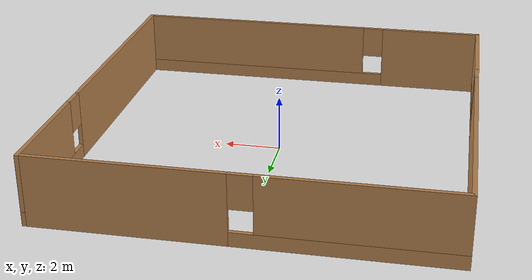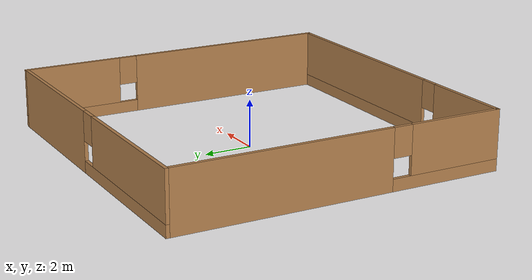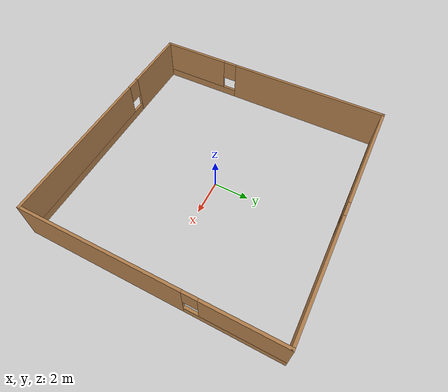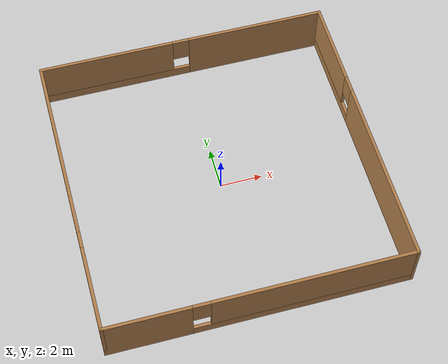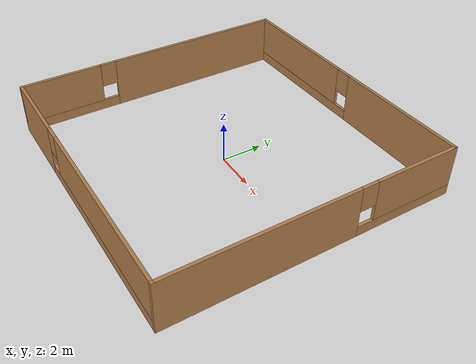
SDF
<?xml version='1.0'?>
<sdf version='1.6'>
  <model name='walls'>
    <pose frame=''>-0.030217 0.029853 0 0 -0 0</pose>
    <link name='Wall_11'>
      <pose frame=''>6.93375 -0 0 0 -0 1.5708</pose>
      <visual name='Wall_11_Visual_0'>
        <pose frame=''>-2.52614 0 1.25 0 -0 0</pose>
        <geometry>
          <box>
            <size>8.94773 0.15 2.5</size>
          </box>
        </geometry>
        <material>
          <script>
            <uri>file://media/materials/scripts/gazebo.material</uri>
            <name>Gazebo/Wood</name>
          </script>
          <ambient>1 1 1 1</ambient>
        </material>
        <meta>
          <layer>0</layer>
        </meta>
      </visual>
      <collision name='Wall_11_Collision_0'>
        <geometry>
          <box>
            <size>8.94773 0.15 2.5</size>
          </box>
        </geometry>
        <pose frame=''>-2.52614 0 1.25 0 -0 0</pose>
      </collision>
      <visual name='Wall_11_Visual_1'>
        <pose frame=''>4.47386 0 0.25 0 -0 0</pose>
        <geometry>
          <box>
            <size>5.05227 0.15 0.5</size>
          </box>
        </geometry>
        <material>
          <script>
            <uri>file://media/materials/scripts/gazebo.material</uri>
            <name>Gazebo/Wood</name>
          </script>
          <ambient>1 1 1 1</ambient>
        </material>
        <meta>
          <layer>0</layer>
        </meta>
      </visual>
      <collision name='Wall_11_Collision_1'>
        <geometry>
          <box>
            <size>5.05227 0.15 0.5</size>
          </box>
        </geometry>
        <pose frame=''>4.47386 0 0.25 0 -0 0</pose>
      </collision>
      <visual name='Wall_11_Visual_2'>
        <pose frame=''>4.87386 0 1.5 0 -0 0</pose>
        <geometry>
          <box>
            <size>4.25227 0.15 2</size>
          </box>
        </geometry>
        <material>
          <script>
            <uri>file://media/materials/scripts/gazebo.material</uri>
            <name>Gazebo/Wood</name>
          </script>
          <ambient>1 1 1 1</ambient>
        </material>
        <meta>
          <layer>0</layer>
        </meta>
      </visual>
      <collision name='Wall_11_Collision_2'>
        <geometry>
          <box>
            <size>4.25227 0.15 2</size>
          </box>
        </geometry>
        <pose frame=''>4.87386 0 1.5 0 -0 0</pose>
      </collision>
      <visual name='Wall_11_Visual_3'>
        <pose frame=''>2.34773 0 1.9 0 -0 0</pose>
        <geometry>
          <box>
            <size>0.8 0.15 1.2</size>
          </box>
        </geometry>
        <material>
          <script>
            <uri>file://media/materials/scripts/gazebo.material</uri>
            <name>Gazebo/Wood</name>
          </script>
          <ambient>1 1 1 1</ambient>
        </material>
        <meta>
          <layer>0</layer>
        </meta>
      </visual>
      <collision name='Wall_11_Collision_3'>
        <geometry>
          <box>
            <size>0.8 0.15 1.2</size>
          </box>
        </geometry>
        <pose frame=''>2.34773 0 1.9 0 -0 0</pose>
      </collision>
    </link>
    <link name='Wall_14'>
      <pose frame=''>-0.008745 6.925 0 0 -0 3.14159</pose>
      <visual name='Wall_14_Visual_0'>
        <pose frame=''>-3.65586 0 1.25 0 -0 0</pose>
        <geometry>
          <box>
            <size>6.68827 0.15 2.5</size>
          </box>
        </geometry>
        <material>
          <script>
            <uri>file://media/materials/scripts/gazebo.material</uri>
            <name>Gazebo/Wood</name>
          </script>
          <ambient>1 1 1 1</ambient>
        </material>
        <meta>
          <layer>0</layer>
        </meta>
      </visual>
      <collision name='Wall_14_Collision_0'>
        <geometry>
          <box>
            <size>6.68827 0.15 2.5</size>
          </box>
        </geometry>
        <pose frame=''>-3.65586 0 1.25 0 -0 0</pose>
      </collision>
      <visual name='Wall_14_Visual_1'>
        <pose frame=''>3.34414 0 0.25 0 -0 0</pose>
        <geometry>
          <box>
            <size>7.31173 0.15 0.5</size>
          </box>
        </geometry>
        <material>
          <script>
            <uri>file://media/materials/scripts/gazebo.material</uri>
            <name>Gazebo/Wood</name>
          </script>
          <ambient>1 1 1 1</ambient>
        </material>
        <meta>
          <layer>0</layer>
        </meta>
      </visual>
      <collision name='Wall_14_Collision_1'>
        <geometry>
          <box>
            <size>7.31173 0.15 0.5</size>
          </box>
        </geometry>
        <pose frame=''>3.34414 0 0.25 0 -0 0</pose>
      </collision>
      <visual name='Wall_14_Visual_2'>
        <pose frame=''>3.74413 0 1.5 0 -0 0</pose>
        <geometry>
          <box>
            <size>6.51173 0.15 2</size>
          </box>
        </geometry>
        <material>
          <script>
            <uri>file://media/materials/scripts/gazebo.material</uri>
            <name>Gazebo/Wood</name>
          </script>
          <ambient>1 1 1 1</ambient>
        </material>
        <meta>
          <layer>0</layer>
        </meta>
      </visual>
      <collision name='Wall_14_Collision_2'>
        <geometry>
          <box>
            <size>6.51173 0.15 2</size>
          </box>
        </geometry>
        <pose frame=''>3.74413 0 1.5 0 -0 0</pose>
      </collision>
      <visual name='Wall_14_Visual_3'>
        <pose frame=''>0.088271 0 1.9 0 -0 0</pose>
        <geometry>
          <box>
            <size>0.8 0.15 1.2</size>
          </box>
        </geometry>
        <material>
          <script>
            <uri>file://media/materials/scripts/gazebo.material</uri>
            <name>Gazebo/Wood</name>
          </script>
          <ambient>1 1 1 1</ambient>
        </material>
        <meta>
          <layer>0</layer>
        </meta>
      </visual>
      <collision name='Wall_14_Collision_3'>
        <geometry>
          <box>
            <size>0.8 0.15 1.2</size>
          </box>
        </geometry>
        <pose frame=''>0.088271 0 1.9 0 -0 0</pose>
      </collision>
    </link>
    <link name='Wall_16'>
      <pose frame=''>-6.93375 -0 0 0 0 -1.5708</pose>
      <visual name='Wall_16_Visual_0'>
        <pose frame=''>-2.41071 0 1.25 0 -0 0</pose>
        <geometry>
          <box>
            <size>9.17859 0.15 2.5</size>
          </box>
        </geometry>
        <material>
          <script>
            <uri>file://media/materials/scripts/gazebo.material</uri>
            <name>Gazebo/Wood</name>
          </script>
          <ambient>1 1 1 1</ambient>
        </material>
        <meta>
          <layer>0</layer>
        </meta>
      </visual>
      <collision name='Wall_16_Collision_0'>
        <geometry>
          <box>
            <size>9.17859 0.15 2.5</size>
          </box>
        </geometry>
        <pose frame=''>-2.41071 0 1.25 0 -0 0</pose>
      </collision>
      <visual name='Wall_16_Visual_1'>
        <pose frame=''>4.58929 0 0.25 0 -0 0</pose>
        <geometry>
          <box>
            <size>4.82141 0.15 0.5</size>
          </box>
        </geometry>
        <material>
          <script>
            <uri>file://media/materials/scripts/gazebo.material</uri>
            <name>Gazebo/Wood</name>
          </script>
          <ambient>1 1 1 1</ambient>
        </material>
        <meta>
          <layer>0</layer>
        </meta>
      </visual>
      <collision name='Wall_16_Collision_1'>
        <geometry>
          <box>
            <size>4.82141 0.15 0.5</size>
          </box>
        </geometry>
        <pose frame=''>4.58929 0 0.25 0 -0 0</pose>
      </collision>
      <visual name='Wall_16_Visual_2'>
        <pose frame=''>4.9893 0 1.5 0 -0 0</pose>
        <geometry>
          <box>
            <size>4.02141 0.15 2</size>
          </box>
        </geometry>
        <material>
          <script>
            <uri>file://media/materials/scripts/gazebo.material</uri>
            <name>Gazebo/Wood</name>
          </script>
          <ambient>1 1 1 1</ambient>
        </material>
        <meta>
          <layer>0</layer>
        </meta>
      </visual>
      <collision name='Wall_16_Collision_2'>
        <geometry>
          <box>
            <size>4.02141 0.15 2</size>
          </box>
        </geometry>
        <pose frame=''>4.9893 0 1.5 0 -0 0</pose>
      </collision>
      <visual name='Wall_16_Visual_3'>
        <pose frame=''>2.57859 0 1.9 0 -0 0</pose>
        <geometry>
          <box>
            <size>0.8 0.15 1.2</size>
          </box>
        </geometry>
        <material>
          <script>
            <uri>file://media/materials/scripts/gazebo.material</uri>
            <name>Gazebo/Wood</name>
          </script>
          <ambient>1 1 1 1</ambient>
        </material>
        <meta>
          <layer>0</layer>
        </meta>
      </visual>
      <collision name='Wall_16_Collision_3'>
        <geometry>
          <box>
            <size>0.8 0.15 1.2</size>
          </box>
        </geometry>
        <pose frame=''>2.57859 0 1.9 0 -0 0</pose>
      </collision>
    </link>
    <link name='Wall_18'>
      <pose frame=''>-0 -6.925 0 0 -0 0</pose>
      <visual name='Wall_18_Visual_0'>
        <pose frame=''>-5.0369 0 1.25 0 -0 0</pose>
        <geometry>
          <box>
            <size>3.94368 0.15 2.5</size>
          </box>
        </geometry>
        <material>
          <script>
            <uri>file://media/materials/scripts/gazebo.material</uri>
            <name>Gazebo/Wood</name>
          </script>
          <ambient>1 1 1 1</ambient>
        </material>
        <meta>
          <layer>0</layer>
        </meta>
      </visual>
      <collision name='Wall_18_Collision_0'>
        <geometry>
          <box>
            <size>3.94368 0.15 2.5</size>
          </box>
        </geometry>
        <pose frame=''>-5.0369 0 1.25 0 -0 0</pose>
      </collision>
      <visual name='Wall_18_Visual_1'>
        <pose frame=''>1.97184 0 0.25 0 -0 0</pose>
        <geometry>
          <box>
            <size>10.0738 0.15 0.5</size>
          </box>
        </geometry>
        <material>
          <script>
            <uri>file://media/materials/scripts/gazebo.material</uri>
            <name>Gazebo/Wood</name>
          </script>
          <ambient>1 1 1 1</ambient>
        </material>
        <meta>
          <layer>0</layer>
        </meta>
      </visual>
      <collision name='Wall_18_Collision_1'>
        <geometry>
          <box>
            <size>10.0738 0.15 0.5</size>
          </box>
        </geometry>
        <pose frame=''>1.97184 0 0.25 0 -0 0</pose>
      </collision>
      <visual name='Wall_18_Visual_2'>
        <pose frame=''>2.37184 0 1.5 0 -0 0</pose>
        <geometry>
          <box>
            <size>9.27381 0.15 2</size>
          </box>
        </geometry>
        <material>
          <script>
            <uri>file://media/materials/scripts/gazebo.material</uri>
            <name>Gazebo/Wood</name>
          </script>
          <ambient>1 1 1 1</ambient>
        </material>
        <meta>
          <layer>0</layer>
        </meta>
      </visual>
      <collision name='Wall_18_Collision_2'>
        <geometry>
          <box>
            <size>9.27381 0.15 2</size>
          </box>
        </geometry>
        <pose frame=''>2.37184 0 1.5 0 -0 0</pose>
      </collision>
      <visual name='Wall_18_Visual_3'>
        <pose frame=''>-2.66506 0 1.9 0 -0 0</pose>
        <geometry>
          <box>
            <size>0.8 0.15 1.2</size>
          </box>
        </geometry>
        <material>
          <script>
            <uri>file://media/materials/scripts/gazebo.material</uri>
            <name>Gazebo/Wood</name>
          </script>
          <ambient>1 1 1 1</ambient>
        </material>
        <meta>
          <layer>0</layer>
        </meta>
      </visual>
      <collision name='Wall_18_Collision_3'>
        <geometry>
          <box>
            <size>0.8 0.15 1.2</size>
          </box>
        </geometry>
        <pose frame=''>-2.66506 0 1.9 0 -0 0</pose>
      </collision>
    </link>
    <static>1</static>
  </model>
</sdf>
